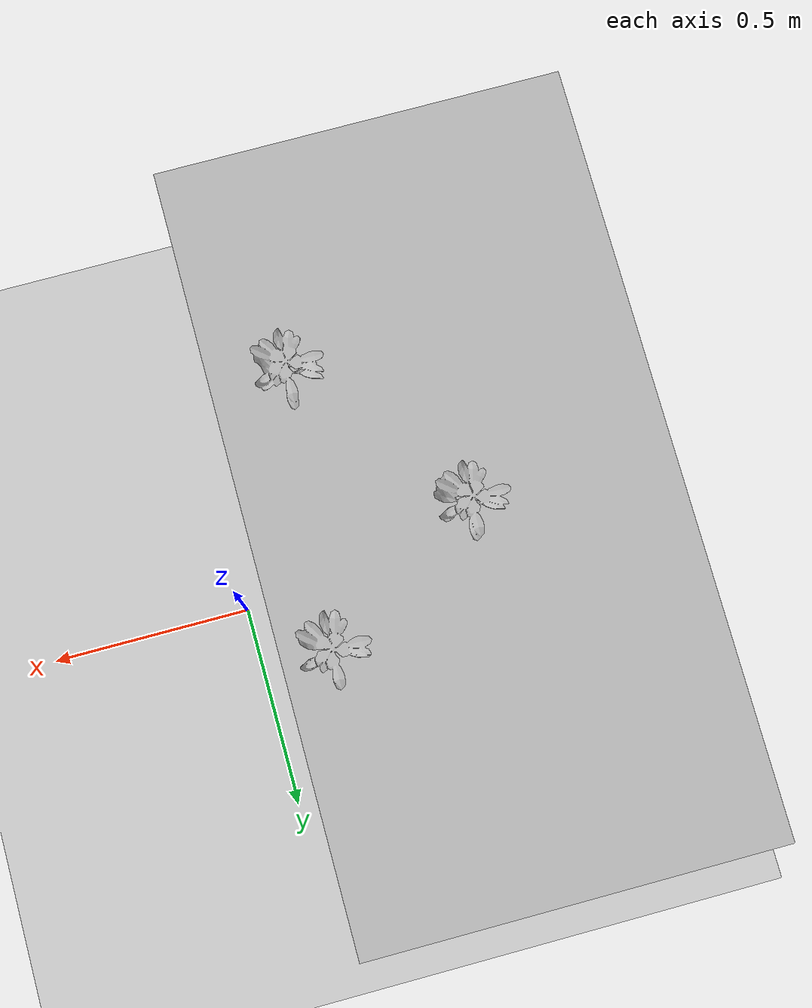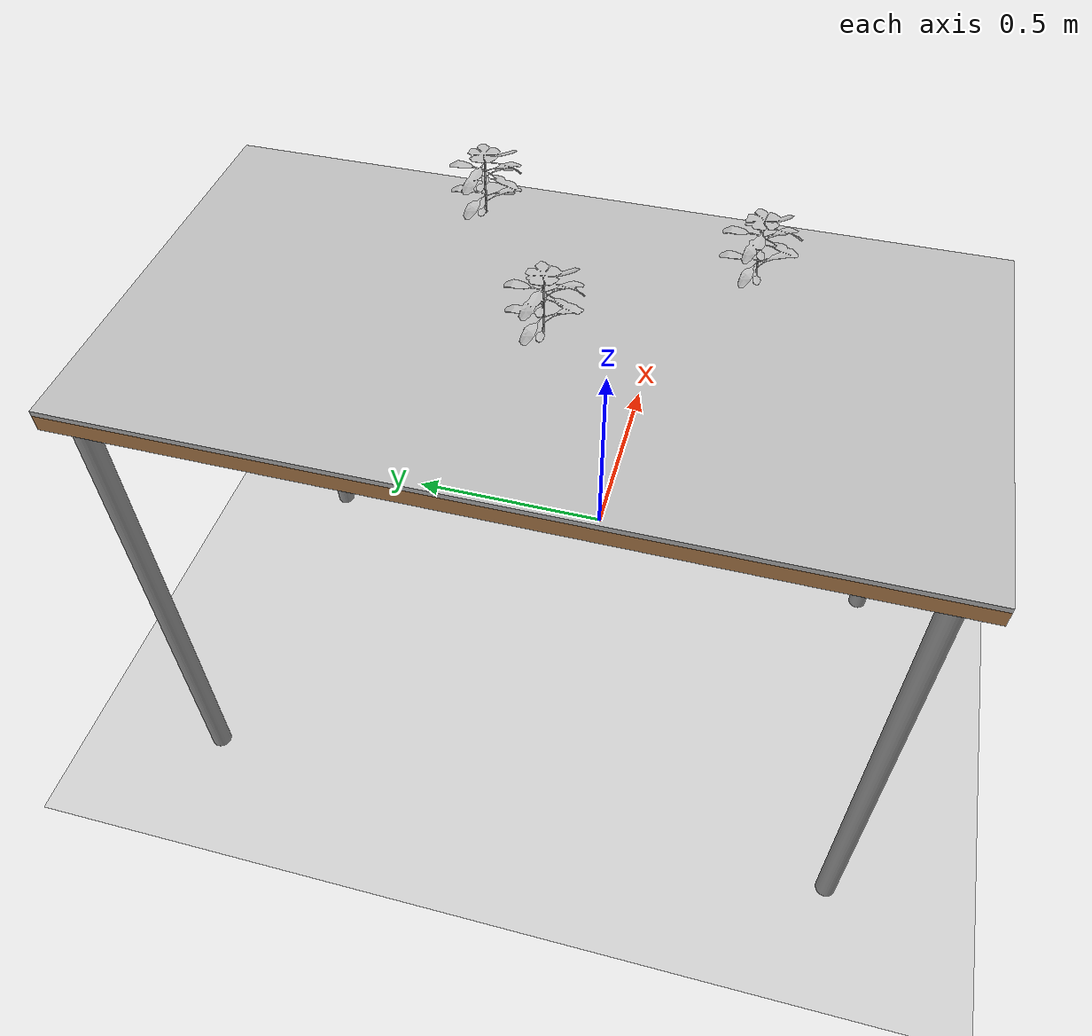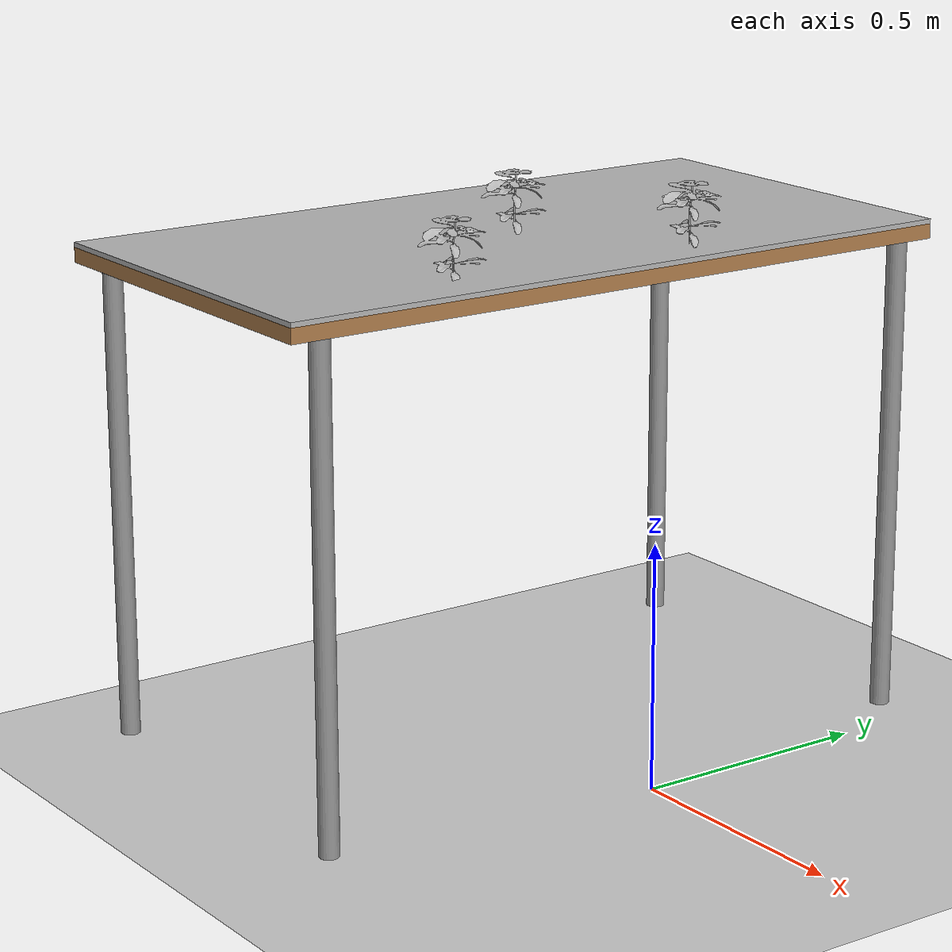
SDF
<sdf version="1.7">
 <world name="default">
  <light name="sun" type="directional">
   <pose>0 0 10 0 -0 0</pose>
   <diffuse>0.8 0.8 0.8 1</diffuse>
   <specular>0.2 0.2 0.2 1</specular>
   <attenuation>
    <range>1000</range>
    <constant>0.9</constant>
    <linear>0.01</linear>
    <quadratic>0.001</quadratic>
   </attenuation>
   <direction>-0.5 0.1 -0.9</direction>
   <spot><inner_angle>0</inner_angle><outer_angle>0</outer_angle><falloff>0</falloff></spot>
  </light>
  <model name="ground_plane">
   <static>1</static>
   <link name="link">
    <collision name="collision">
     <geometry><plane><normal>0 0 1</normal><size>100 100</size></plane></geometry>
     <surface>
      <contact><collide_bitmask>65535</collide_bitmask></contact>
      <friction><ode><mu>100</mu><mu2>50</mu2></ode></friction>
     </surface>
    </collision>
    <visual name="visual">
     <cast_shadows>0</cast_shadows>
     <geometry><plane><normal>0 0 1</normal><size>100 100</size></plane></geometry>
     <material>
      <script><uri>file://media/materials/scripts/gazebo.material</uri><name>Gazebo/Grey</name></script>
     </material>
    </visual>
   </link>
  </model>
  <gravity>0 0 -9.8</gravity>
  <magnetic_field>6e-06 2.3e-05 -4.2e-05</magnetic_field>
  <atmosphere type="adiabatic"/>
  <physics type="ode">
   <max_step_size>0.001</max_step_size>
   <real_time_factor>1</real_time_factor>
   <real_time_update_rate>1000</real_time_update_rate>
  </physics>
  <scene><ambient>0.4 0.4 0.4 1</ambient><background>0.7 0.7 0.7 1</background><shadows>1</shadows></scene>
  <spherical_coordinates>
   <surface_model>EARTH_WGS84</surface_model>
   <latitude_deg>0</latitude_deg>
   <longitude_deg>0</longitude_deg>
   <elevation>0</elevation>
   <heading_deg>0</heading_deg>
  </spherical_coordinates>
  <model name="table">
   <static>1</static>
   <link name="link">
    <collision name="surface">
     <pose>0 0 1 0 -0 0</pose>
     <geometry><box><size>1.5 0.8 0.03</size></box></geometry>
     <surface><friction><ode><mu>0.6</mu><mu2>0.6</mu2></ode></friction></surface>
    </collision>
    <visual name="visual1">
     <pose>0 0 1 0 -0 0</pose>
     <geometry><box><size>1.5 0.8 0.03</size></box></geometry>
     <material>
      <script><uri>file://media/materials/scripts/gazebo.material</uri><name>Gazebo/Wood</name></script>
     </material>
    </visual>
    <collision name="front_left_leg">
     <pose>0.68 0.38 0.5 0 -0 0</pose>
     <geometry><cylinder><radius>0.02</radius><length>1</length></cylinder></geometry>
    </collision>
    <visual name="front_left_leg">
     <pose>0.68 0.38 0.5 0 -0 0</pose>
     <geometry><cylinder><radius>0.02</radius><length>1</length></cylinder></geometry>
     <material>
      <script><uri>file://media/materials/scripts/gazebo.material</uri><name>Gazebo/Grey</name></script>
     </material>
    </visual>
    <collision name="front_right_leg">
     <pose>0.68 -0.38 0.5 0 -0 0</pose>
     <geometry><cylinder><radius>0.02</radius><length>1</length></cylinder></geometry>
    </collision>
    <visual name="front_right_leg">
     <pose>0.68 -0.38 0.5 0 -0 0</pose>
     <geometry><cylinder><radius>0.02</radius><length>1</length></cylinder></geometry>
     <material>
      <script><uri>file://media/materials/scripts/gazebo.material</uri><name>Gazebo/Grey</name></script>
     </material>
    </visual>
    <collision name="back_right_leg">
     <pose>-0.68 -0.38 0.5 0 -0 0</pose>
     <geometry><cylinder><radius>0.02</radius><length>1</length></cylinder></geometry>
    </collision>
    <visual name="back_right_leg">
     <pose>-0.68 -0.38 0.5 0 -0 0</pose>
     <geometry><cylinder><radius>0.02</radius><length>1</length></cylinder></geometry>
     <material>
      <script><uri>file://media/materials/scripts/gazebo.material</uri><name>Gazebo/Grey</name></script>
     </material>
    </visual>
    <collision name="back_left_leg">
     <pose>-0.68 0.38 0.5 0 -0 0</pose>
     <geometry><cylinder><radius>0.02</radius><length>1</length></cylinder></geometry>
    </collision>
    <visual name="back_left_leg">
     <pose>-0.68 0.38 0.5 0 -0 0</pose>
     <geometry><cylinder><radius>0.02</radius><length>1</length></cylinder></geometry>
     <material>
      <script><uri>file://media/materials/scripts/gazebo.material</uri><name>Gazebo/Grey</name></script>
     </material>
    </visual>
   </link>
   <pose>-0.475 0 0 0 -0 1.57</pose>
  </model>
  <model name="grass">
   <static>1</static>
   <link name="link">
    <collision name="collision">
     <geometry><mesh><uri>model://grass/meshes/grass.obj</uri></mesh></geometry>
     <surface><friction><ode><mu>0.2</mu><mu2>0.2</mu2></ode></friction></surface>
    </collision>
    <inertial>
     <mass>1</mass>
     <inertia><ixx>1</ixx><ixy>0</ixy><ixz>0</ixz><iyy>1</iyy><iyz>0</iyz><izz>1</izz></inertia>
    </inertial>
    <visual name="visual_abcedf">
     <geometry><mesh><uri>model://grass/meshes/grass.obj</uri></mesh></geometry>
     <material>
      <script>
       <uri>model://grass/materials/scripts</uri>
       <uri>model://grass/materials/textures</uri>
       <name>grass/Diffuse</name>
      </script>
     </material>
    </visual>
   </link>
   <pose>-0.475 0 1.02 0 -0 1.57</pose>
  </model>
  <model name="flower">
   <static>1</static>
   <link name="link">
    <collision name="collision">
     <geometry><mesh><uri>model://Flowers001/meshes/Flor001.obj</uri></mesh></geometry>
     <surface><friction><ode><mu>0.2</mu><mu2>0.2</mu2></ode></friction></surface>
    </collision>
    <inertial>
     <mass>1</mass>
     <inertia><ixx>1</ixx><ixy>0</ixy><ixz>0</ixz><iyy>1</iyy><iyz>0</iyz><izz>1</izz></inertia>
    </inertial>
    <visual name="something_something">
     <geometry><mesh><uri>model://Flowers001/meshes/Flor001.obj</uri></mesh></geometry>
     <material>
      <script>
       <uri>model://Flowers001/materials/scripts</uri>
       <uri>model://Flowers001/materials/textures</uri>
       <name>flower/Diffuse</name>
      </script>
     </material>
    </visual>
   </link>
   <pose>-0.477897 0.016615 1.15486 1.57 -0 0</pose>
  </model>
  <model name="flower_0">
   <static>1</static>
   <link name="link">
    <collision name="collision">
     <geometry><mesh><uri>model://Flowers001/meshes/Flor001.obj</uri></mesh></geometry>
     <surface><friction><ode><mu>0.2</mu><mu2>0.2</mu2></ode></friction></surface>
    </collision>
    <inertial>
     <mass>1</mass>
     <inertia><ixx>1</ixx><ixy>0</ixy><ixz>0</ixz><iyy>1</iyy><iyz>0</iyz><izz>1</izz></inertia>
    </inertial>
    <visual name="something_something">
     <geometry><mesh><uri>model://Flowers001/meshes/Flor001.obj</uri></mesh></geometry>
     <material>
      <script>
       <uri>model://Flowers001/materials/scripts</uri>
       <uri>model://Flowers001/materials/textures</uri>
       <name>flower/Diffuse</name>
      </script>
     </material>
    </visual>
   </link>
   <pose>-0.221745 -0.306004 1.14372 1.57 -0 0</pose>
  </model>
  <model name="flower_1">
   <static>1</static>
   <link name="link">
    <collision name="collision">
     <geometry><mesh><uri>model://Flowers001/meshes/Flor001.obj</uri></mesh></geometry>
     <surface><friction><ode><mu>0.2</mu><mu2>0.2</mu2></ode></friction></surface>
    </collision>
    <inertial>
     <mass>1</mass>
     <inertia><ixx>1</ixx><ixy>0</ixy><ixz>0</ixz><iyy>1</iyy><iyz>0</iyz><izz>1</izz></inertia>
    </inertial>
    <visual name="something_something">
     <geometry><mesh><uri>model://Flowers001/meshes/Flor001.obj</uri></mesh></geometry>
     <material>
      <script>
       <uri>model://Flowers001/materials/scripts</uri>
       <uri>model://Flowers001/materials/textures</uri>
       <name>flower/Diffuse</name>
      </script>
     </material>
    </visual>
   </link>
   <pose>-0.17014 0.211555 1.15936 1.56919 -0 0</pose>
  </model>
 </world>
</sdf>
